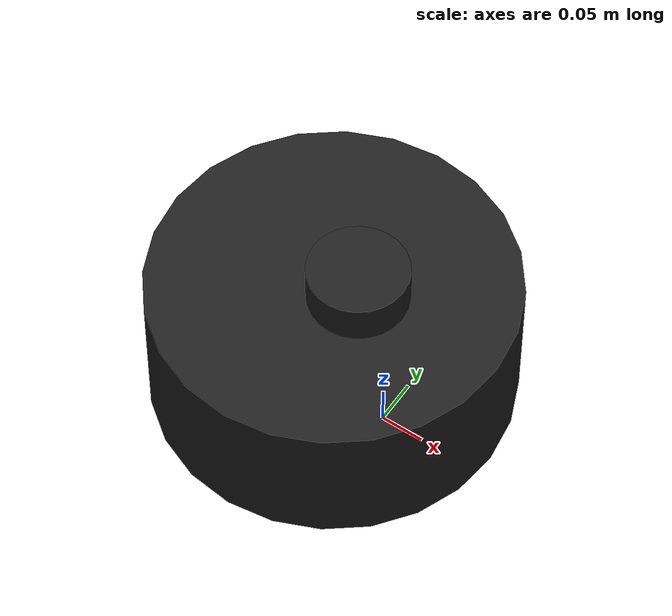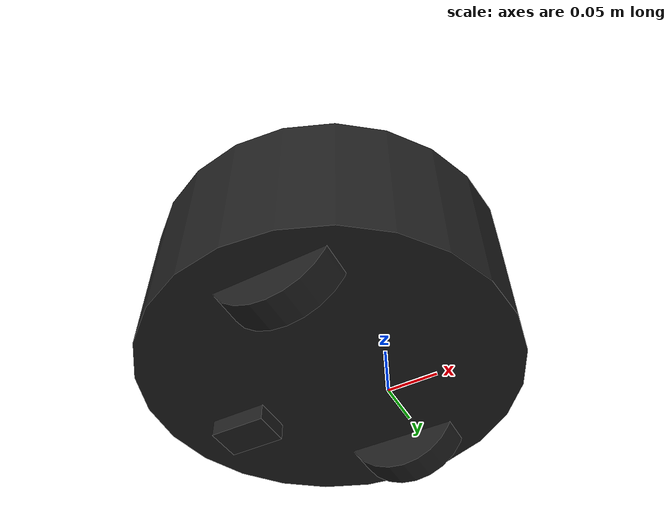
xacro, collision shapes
<?xml version="1.0" ?>
<robot name="turtlebot3_burger" xmlns:xacro="http://ros.org/wiki/xacro">
  <xacro:include filename="$(find dashgo_description)/urdf/dashgobase/common_properties.xacro"/>
  <xacro:include filename="$(find dashgo_description)/urdf/dashgobase/dashgo.gazebo.xacro"/>

  <link name="base_footprint"/>

  <joint name="base_joint" type="fixed">
    <parent link="base_footprint"/>
    <child link="base_link"/>
    <origin xyz="0.0 0.0 0.020" rpy="0 0 0"/>
  </joint>

  <link name="base_link">
    <visual>
      <origin xyz="-0.06 0 0.1" rpy="0 0 0"/>
      <geometry>
        <cylinder radius="0.2" length="0.165"/>
      </geometry>
      <material name="light_black"/>
    </visual>

    <collision>
      <origin xyz="-0.064 0 0.1" rpy="0 0 0"/>
      <geometry>
        <cylinder radius="0.2" length="0.165"/>
      </geometry>
    </collision>

  </link>

  <joint name="wheel_left_joint" type="continuous">
    <parent link="base_link"/>
    <child link="wheel_left_link"/>
    <origin xyz="-0.04 0.14 0.046" rpy="-1.57 0 0"/>
    <axis xyz="0 0 1"/>
  </joint>

  <link name="wheel_left_link">
    <visual>
      <origin xyz="0 0 0" rpy="1.57 0 0"/>
      <geometry>
        <mesh filename="package://dashgo_description/urdf/dashgobase/meshes/wheels/left_tire.stl" scale="0.002 0.002 0.002"/>
      </geometry>
      <material name="dark"/>
    </visual>

    <collision>
      <origin xyz="0 0 0" rpy="0 0 0"/>
      <geometry>
        <cylinder length="0.036" radius="0.066"/>
      </geometry>
    </collision>

    <inertial>
      <origin xyz="0 0 0" />
      <mass value="2.8498940e-02" />
      <inertia ixx="1.1175580e-05" ixy="-4.2369783e-11" ixz="-5.9381719e-09"
               iyy="1.1192413e-05" iyz="-1.4400107e-11"
               izz="2.0712558e-05" />
      </inertial>
  </link>

  <joint name="wheel_right_joint" type="continuous">
    <parent link="base_link"/>
    <child link="wheel_right_link"/>
    <origin xyz="-0.04 -0.14 0.046" rpy="-1.57 0 0"/>
    <axis xyz="0 0 1"/>
  </joint>

  <link name="wheel_right_link">
    <visual>
      <origin xyz="0 0 0" rpy="1.57 0 0"/>
      <geometry>
        <mesh filename="package://dashgo_description/urdf/dashgobase/meshes/wheels/right_tire.stl" scale="0.002 0.002 0.002"/>
      </geometry>
      <material name="dark"/>
    </visual>

    <collision>
      <origin xyz="0 0 0" rpy="0 0 0"/>
      <geometry>
        <cylinder length="0.036" radius="0.066"/>
      </geometry>
    </collision>

    <inertial>
      <origin xyz="0 0 0" />
      <mass value="2.8498940e-02" />
      <inertia ixx="1.1175580e-05" ixy="-4.2369783e-11" ixz="-5.9381719e-09"
               iyy="1.1192413e-05" iyz="-1.4400107e-11"
               izz="2.0712558e-05" />
      </inertial>
  </link>

  <joint name="caster_back_joint" type="fixed">
    <parent link="base_link"/>
    <child link="caster_back_link"/>
    <origin xyz="-0.162 0 -0.008" rpy="-1.57 0 0"/>
  </joint>

  <link name="caster_back_link">
    <collision>
      <origin xyz="0 0.002 0" rpy="0 0 0"/>
      <geometry>
        <box size="0.060 0.018 0.040"/>
      </geometry>
    </collision>

    <inertial>
      <origin xyz="0 0 0" />
      <mass value="0.005" />
      <inertia ixx="0.001" ixy="0.0" ixz="0.0"
               iyy="0.001" iyz="0.0"
               izz="0.001" />
    </inertial>
  </link>

  <joint name="imu_joint" type="fixed">
    <parent link="base_link"/>
    <child link="imu_link"/>
    <origin xyz="-0.064 0 0.136" rpy="0 0 0"/>
  </joint>

  <link name="imu_link"/>

  <joint name="scan_joint" type="fixed">
    <parent link="base_link"/>
    <child link="laser_frame"/>
    <origin xyz="-0.064 0 0.21" rpy="0 0 0"/>
  </joint>

  <link name="laser_frame">
    <visual>
      <origin xyz="0 0 0.0" rpy="0 0 0"/>
      <geometry>
        <mesh filename="package://dashgo_description/urdf/dashgobase/meshes/sensors/lds.stl" scale="0.001 0.001 0.001"/>
      </geometry>
      <material name="dark"/>
    </visual>

    <collision>
      <origin xyz="0.03 0 -0.013" rpy="0 0 0"/>
      <geometry>
        <cylinder length="0.063" radius="0.055"/>
      </geometry>
    </collision>

    <inertial>
      <mass value="0.114" />
      <origin xyz="0 0 0" />
      <inertia ixx="0.001" ixy="0.0" ixz="0.0"
               iyy="0.001" iyz="0.0"
               izz="0.001" />
    </inertial>
  </link>

</robot>
